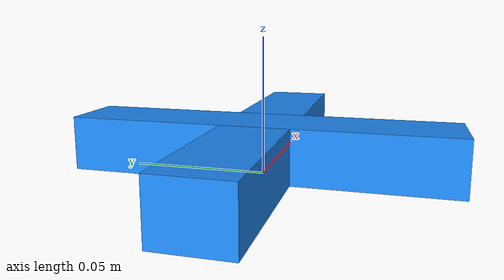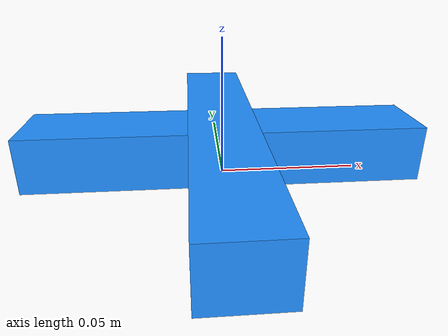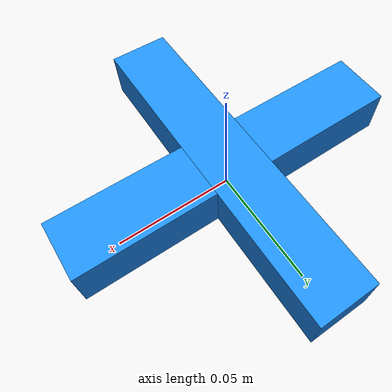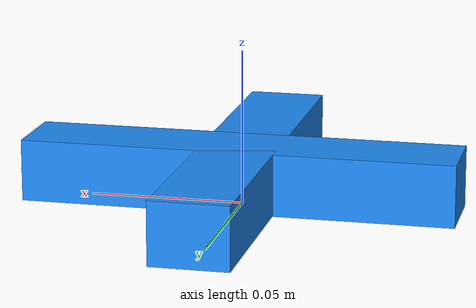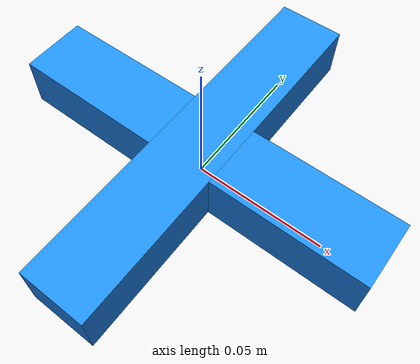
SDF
<sdf version="1.7">
  <model name="puzzle_cross_piece">
    <link name="cross_link">
      <inertial>
        <mass>0.001</mass>
        <inertia>
          <ixx>2.0e-04</ixx>
          <iyy>2.0e-04</iyy>
          <izz>3.0e-04</izz>
          <ixy>0</ixy>
          <ixz>0</ixz>
          <iyz>0</iyz>
        </inertia>
      </inertial>
      <visual name="cross_vertical">
        <pose>0 0 0.01 0 0 0</pose>
        <geometry>
          <box>
            <size>0.025 0.14 0.02</size>
          </box>
        </geometry>
        <material>
          <ambient>0.12 0.55 0.98 1</ambient>
          <diffuse>0.12 0.55 0.98 1</diffuse>
          <specular>0.2 0.2 0.2 1</specular>
        </material>
      </visual>
      <visual name="cross_horizontal">
        <pose>0 0 0.01 0 0 0</pose>
        <geometry>
          <box>
            <size>0.14 0.025 0.02</size>
          </box>
        </geometry>
        <material>
          <ambient>0.12 0.55 0.98 1</ambient>
          <diffuse>0.12 0.55 0.98 1</diffuse>
          <specular>0.2 0.2 0.2 1</specular>
        </material>
      </visual>

      <collision name="cross_vertical_collision">
        <pose>0 0 0.01 0 0 0</pose>
        <geometry>
          <box>
            <size>0.025 0.14 0.02</size>
          </box>
        </geometry>
        <surface>
          <friction>
            <ode>
              <mu>10.0</mu>
              <mu2>10.0</mu2>
            </ode>
          </friction>
        </surface>
      </collision>
      <collision name="cross_horizontal_collision">
        <pose>0 0 0.01 0 0 0</pose>
        <geometry>
          <box>
            <size>0.14 0.025 0.02</size>
          </box>
        </geometry>
        <surface>
          <friction>
            <ode>
              <mu>10.0</mu>
              <mu2>10.0</mu2>
            </ode>
          </friction>
        </surface>
      </collision>
    </link>
  </model>
</sdf>
